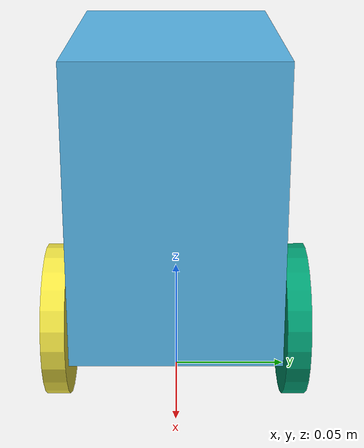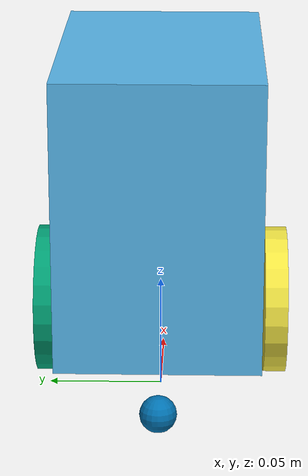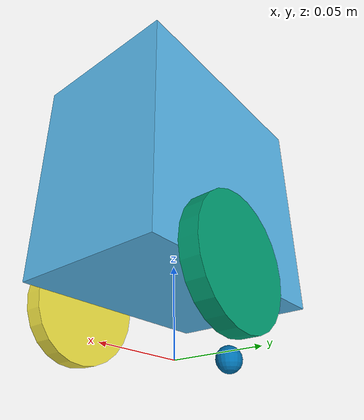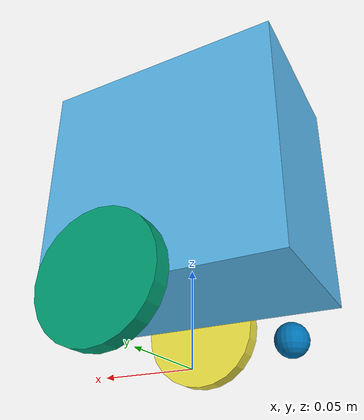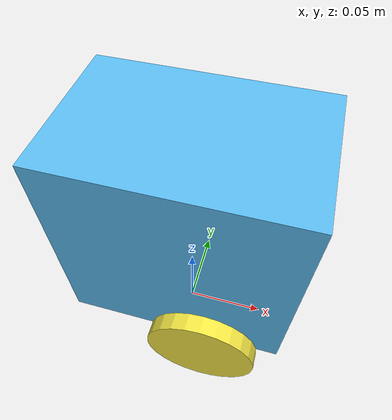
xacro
<?xml version="1.0"?>
<robot name="duckiebot" xmlns:xacro="http://www.ros.org/wiki/xacro">

  <xacro:property name="wheel_radius" value="0.033"/>
  <xacro:property name="wheel_width"  value="0.01"/>
  <xacro:property name="wheel_sep"    value="0.102"/>
  <xacro:property name="chassis_x"    value="0.13"/>
  <xacro:property name="chassis_y"    value="0.086"/>
  <xacro:property name="chassis_z"    value="0.123"/>
  <xacro:property name="J_mult" value="$(arg J_mult)"/>
  <xacro:arg name="J_mult" default="1.0"/>

  <link name="base_link"/>

  <joint name="base_to_chassis" type="fixed">
    <parent link="base_link"/>
    <child link="chassis"/>
    <origin xyz="0 0 ${wheel_radius}" rpy="0 0 0"/>
  </joint>

  <link name="chassis">
    <visual>
      <origin xyz="0 0 ${chassis_z/2}" rpy="0 0 0"/>
      <geometry><box size="${chassis_x} ${chassis_y} ${chassis_z}"/></geometry>
    </visual>
    <collision>
      <origin xyz="0 0 ${chassis_z/2}" rpy="0 0 0"/>
      <geometry><box size="${chassis_x} ${chassis_y} ${chassis_z}"/></geometry>
    </collision>
    <inertial>
      <origin xyz="0 0 ${chassis_z/2}" rpy="0 0 0"/>
      <mass value="0.935"/>
      <inertia ixx="1.76e-3" ixy="0" ixz="0"
              iyy="2.50e-3" iyz="0"
              izz="4.1e-3"/>
    </inertial>
  </link>

  <xacro:macro name="wheel" params="prefix y_pos">
    <link name="${prefix}_wheel_link">
      <visual>
        <origin xyz="0 0 0" rpy="1.5708 0 0"/>
        <geometry><cylinder radius="${wheel_radius}" length="${wheel_width}"/></geometry>
      </visual>
      <collision>
        <origin xyz="0 0 0" rpy="1.5708 0 0"/>
        <geometry><cylinder radius="${wheel_radius}" length="${wheel_width}"/></geometry>
      </collision>
      <inertial>
        <mass value="0.03"/>
        <inertia ixx="1.5e-4" ixy="0" ixz="0"
          iyy="${2.5e-4 * J_mult}" iyz="0"
          izz="1.5e-4"/>
      </inertial>
    </link>

    <joint name="${prefix}_wheel_joint" type="continuous">
      <parent link="chassis"/>
      <child link="${prefix}_wheel_link"/>
      <origin xyz="0.02 ${y_pos} 0" rpy="0 0 0"/>
      <axis xyz="0 1 0"/>
      <dynamics damping="0.0457"/>
    </joint>
  </xacro:macro>

  <xacro:wheel prefix="left"  y_pos="${wheel_sep/2}"/>
  <xacro:wheel prefix="right" y_pos="-${wheel_sep/2}"/>

  <link name="caster_link">
    <visual>
      <geometry><sphere radius="0.008"/></geometry>
    </visual>
    <collision>
      <geometry><sphere radius="0.008"/></geometry>
    </collision>
    <inertial>
      <mass value="0.005"/>
      <inertia ixx="1.28e-7" ixy="0" ixz="0"
               iyy="1.28e-7" iyz="0"
               izz="1.28e-7"/>
    </inertial>
  </link>

  <joint name="caster_joint" type="fixed">
    <parent link="chassis"/>
    <child link="caster_link"/>
    <origin xyz="-0.05 0 ${0.008 - wheel_radius}" rpy="0 0 0"/>
  </joint>

  <ros2_control name="GazeboSystem" type="system">
    <hardware>
      <plugin>gazebo_ros2_control/GazeboSystem</plugin>
    </hardware>
    <joint name="left_wheel_joint">
      <command_interface name="effort">
        <param name="min">-1.0</param>
        <param name="max">1.0</param>
      </command_interface>
      <state_interface name="position"/>
      <state_interface name="velocity"/>
      <state_interface name="effort"/>
    </joint>
    <joint name="right_wheel_joint">
      <command_interface name="effort">
        <param name="min">-1.0</param>
        <param name="max">1.0</param>
      </command_interface>
      <state_interface name="position"/>
      <state_interface name="velocity"/>
      <state_interface name="effort"/>
    </joint>
  </ros2_control>

  <gazebo>
    <plugin filename="libgazebo_ros2_control.so" name="gazebo_ros2_control">
      <parameters>$(find duckiebot)/config/controller_config.yaml</parameters>
      <robot_param>robot_description</robot_param>
      <robot_param_node>robot_state_publisher</robot_param_node>
    </plugin>
  </gazebo>

  <gazebo reference="caster_link">
    <mu1>0.01</mu1>
    <mu2>0.01</mu2>
  </gazebo>

  <gazebo reference="left_wheel_link">
    <mu1>1.0</mu1>
    <mu2>1.0</mu2>
    <kp>1e7</kp>
    <kd>1.0</kd>
    <minDepth>0.001</minDepth>
    <maxVel>0.0</maxVel>
  </gazebo>

  <gazebo reference="right_wheel_link">
    <mu1>1.0</mu1>
    <mu2>1.0</mu2>
    <kp>1e7</kp>
    <kd>1.0</kd>
    <minDepth>0.001</minDepth>
    <maxVel>0.0</maxVel>
  </gazebo>

  <gazebo>
    <plugin name="gazebo_ros_p3d" filename="libgazebo_ros_p3d.so">
      <ros>
        <namespace>/</namespace>
        <remapping>odom:=ground_truth/odom</remapping>
      </ros>
      <body_name>base_link</body_name>
      <frame_name>world</frame_name>
      <update_rate>100.0</update_rate>
      <gaussian_noise>0.0</gaussian_noise>
    </plugin>
  </gazebo>
</robot>
